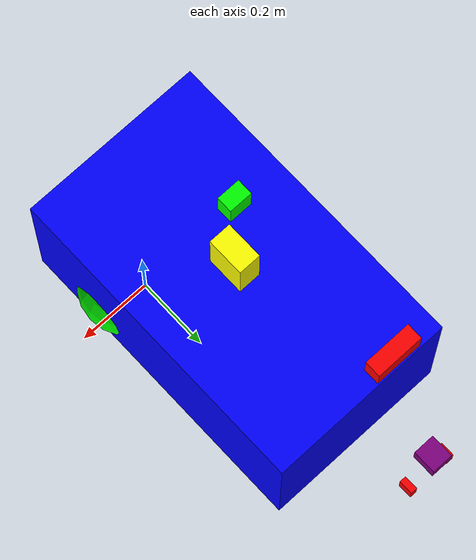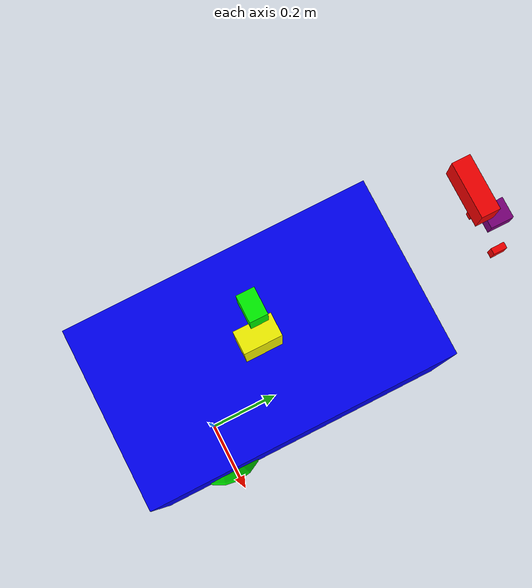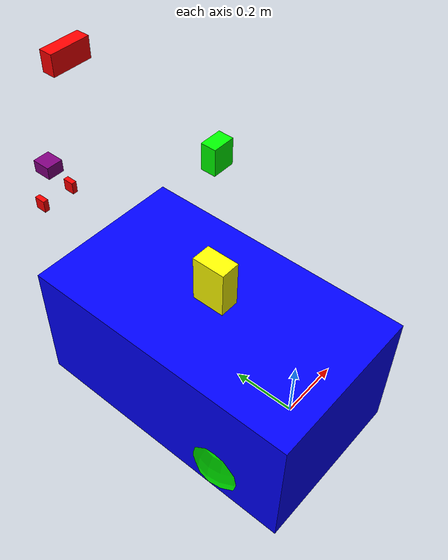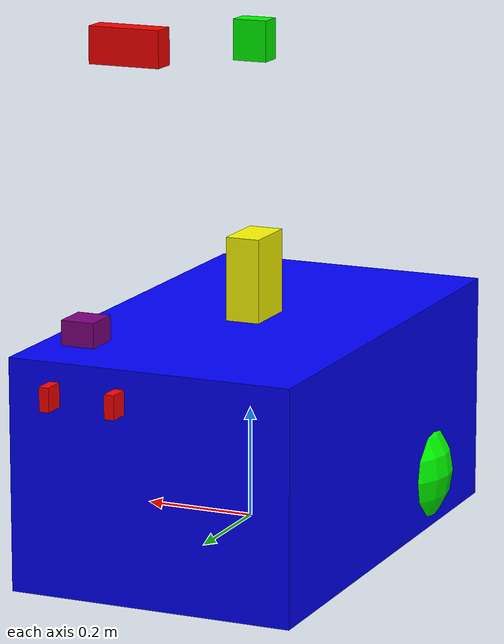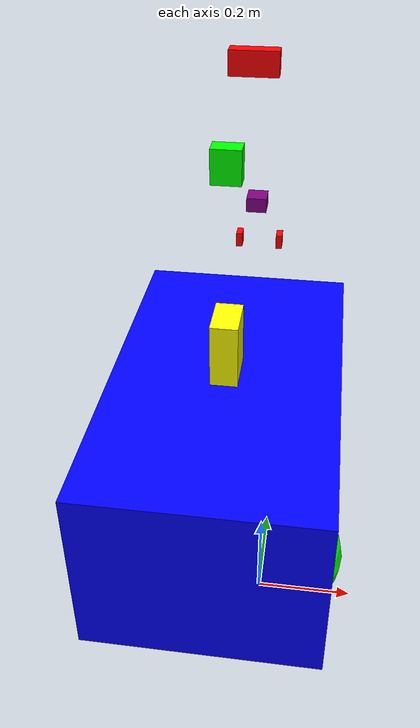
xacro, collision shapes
<?xml version="1.0"?>
<robot name="gruv_robot" xmlns:xacro="http://www.ros.org/wiki/xacro">

<!-- Include common properties -->
<xacro:include filename="common_properties.xacro"/>

<!-- Include mobile uvc -->
<xacro:include filename="mobile_uvc.xacro"/>

<!-- Include scara arm -->
<xacro:include filename="scara_arm.xacro"/>

</robot>

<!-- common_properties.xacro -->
<robot xmlns:xacro="http://www.ros.org/wiki/xacro">

    <!-- Common materials -->

    <material name="blue"><color rgba="0 0 1 1"/></material>
    <material name="green"><color rgba="0 1 0 1"/></material>
    <material name="yellow"><color rgba="1 1 0 1"/></material>
    <material name="orange"><color rgba="1 0.5 0 1"/></material>
    <material name="purple"><color rgba="0.5 0 0.5 1"/></material>
    <material name="red"><color rgba="1 0 0 1"/></material>
    <material name="gray"><color rgba="0.5 0.5 0.5 1"/></material>
    <material name="grey"><color rgba="0.5 0.5 0.5 1"/></material>

    <!-- Common inertia calculations -->

    <xacro:macro name="box_inertia" params="m x y z o_xyz o_rpy">
        <inertial>
            <mass value="${m}" />
            <origin xyz="${o_xyz}" rpy="${o_rpy}" />
            <inertia ixx="${(m/12) * (y*y + z*z)}" ixy="0" ixz="0"
                     iyy="${(m/12) * (x*x + z*z)}" iyz="0"
                     izz="${(m/12) * (x*x + y*y)}" />
        </inertial>
    </xacro:macro>

    <xacro:macro name="cylinder_inertia" params="m r h o_xyz o_rpy">
        <inertial>
            <mass value="${m}"/>
            <origin xyz="${o_xyz}" rpy="${o_rpy}"/>
            <inertia
                ixx="${(1/12.0)*m*(3*r*r + h*h)}" ixy="0" ixz="0"
                iyy="${(1/12.0)*m*(3*r*r + h*h)}" iyz="0"
                izz="${(1/2.0)*m*r*r}"/>
        </inertial>
    </xacro:macro>

    <xacro:macro name="sphere_inertia" params="m r o_xyz o_rpy">
        <inertial>
            <mass value="${m}"/>
            <origin xyz="${o_xyz}" rpy="${o_rpy}"/>
            <inertia
                ixx="${(2/5.0)*m*r*r}" ixy="0" ixz="0"
                iyy="${(2/5.0)*m*r*r}" iyz="0"
                izz="${(2/5.0)*m*r*r}"/>
        </inertial>
    </xacro:macro>

</robot>

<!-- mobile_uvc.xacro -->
<robot xmlns:xacro="http://www.ros.org/wiki/xacro">

  <!--       PROPERTIES          -->

  <xacro:property name="wheel_radius" value="0.119289"/>
  <xacro:property name="wheel_width" value="0.160767"/>
  <xacro:property name="base_width" value="0.478531"/>
  <xacro:property name="base_length" value="0.849993"/>
  <xacro:property name="base_height" value="0.253914"/>

  <xacro:property name="roda_radius" value="0.038463"/>

  <xacro:property name="base_x" value="0.102772"/>
  <xacro:property name="base_y" value="-0.213746"/>
  <xacro:property name="base_z" value="-0.353914"/>

  <xacro:property name="left_wheel_x" value="0.342038"/>
  <xacro:property name="right_wheel_x" value="-0.136493"/>
  <xacro:property name="wheel_z" value="-0.119289"/>

  <xacro:property name="roda_x" value="0.102772"/>
  <xacro:property name="roda_y" value="-0.422475"/>
  <xacro:property name="roda_z" value="-0.045338"/>

  <!-- Masses -->
  <xacro:property name="base_mass" value="2.5"/>
  <xacro:property name="wheel_mass" value="0.35"/>
  <xacro:property name="roda_mass" value="0.2"/>

  <!--        ROOT FRAME         -->

  <link name="base_footprint"/>

  <!--     MOBILE BASE LINK      -->

  <link name="mobile_uvc_base_link">
    <visual>
      <geometry>
        <mesh filename="file:///home/linos/cad_projects/mobile/body.stl" scale="0.001 0.001 0.001"/>
      </geometry>
      <origin xyz="${base_x} ${base_y} ${base_z}" rpy="0 0 0"/>
      <material name="blue"/>
    </visual>

    <collision>
      <geometry>
        <box size="0.500 0.849993 0.4"/>
      </geometry>
      <origin xyz="0 0 ${-0.253914/2}" rpy="0 0 0"/>
    </collision>

    <!-- INERTIA (BOX) -->
    <xacro:box_inertia
        m="${base_mass}"
        x="0.500"
        y="0.849993"
        z="0.4"
        o_xyz="0 0 ${-0.253914/2}"
        o_rpy="0 0 0"/>
  </link>

  <!--       LEFT WHEEL          -->

  <link name="left_wheel_link">
    <visual>
      <geometry>
        <mesh filename="file:///home/linos/cad_projects/mobile/left_wheel.stl" scale="0.001 0.001 0.001"/>
      </geometry>
      <origin xyz="${left_wheel_x} 0 ${wheel_z}" rpy="0 0 0"/>
      <material name="green"/>
    </visual>

    <collision>
      <geometry>
        <sphere radius="${wheel_radius}"/>
      </geometry>
      <origin xyz="${wheel_width/2} 0 0" rpy="0 0 0"/>
    </collision>

    <!-- INERTIA (SPHERE) -->
    <xacro:sphere_inertia
        m="${wheel_mass}"
        r="${wheel_radius}"
        o_xyz="${wheel_width/2} 0 0"
        o_rpy="0 0 0"/>
  </link>

  <!--       RIGHT WHEEL         -->

  <link name="right_wheel_link">
    <visual>
      <geometry>
        <mesh filename="file:///home/linos/cad_projects/mobile/right_wheel.stl" scale="0.001 0.001 0.001"/>
      </geometry>
      <origin xyz="${right_wheel_x} 0 ${wheel_z}" rpy="0 0 0"/>
      <material name="green"/>
    </visual>

    <collision>
      <geometry>
        <sphere radius="${wheel_radius}"/>
      </geometry>
      <origin xyz="${-wheel_width/2} 0 0" rpy="0 0 0"/>
    </collision>

    <!-- INERTIA (SPHERE) -->
    <xacro:sphere_inertia
        m="${wheel_mass}"
        r="${wheel_radius}"
        o_xyz="${-wheel_width/2} 0 0"
        o_rpy="0 0 0"/>
  </link>

  <!--           RODA            -->

  <link name="roda_link">
    <visual>
      <geometry>
        <mesh filename="file:///home/linos/cad_projects/mobile/roda.stl" scale="0.001 0.001 0.001"/>
      </geometry>
      <origin xyz="${roda_x} ${roda_y} ${roda_z}" rpy="0 0 0"/>
      <material name="green"/>
    </visual>

    <collision>
      <geometry>
        <sphere radius="${roda_radius}"/>
      </geometry>
    </collision>

    <!-- INERTIA (SPHERE) -->
    <xacro:sphere_inertia
        m="${roda_mass}"
        r="${roda_radius}"
        o_xyz="0 0 0"
        o_rpy="0 0 0"/>
  </link>

  <!--           JOINTS          -->

  <joint name="base_to_base_footprint_joint" type="fixed">
    <parent link="base_footprint"/>
    <child link="mobile_uvc_base_link"/>
    <origin xyz="${-base_x} ${-base_y} ${-base_z}" rpy="0 0 0"/>
  </joint>

  <joint name="left_wheel_joint" type="continuous">
    <parent link="mobile_uvc_base_link"/>
    <child link="left_wheel_link"/>
    <origin xyz="${base_x - left_wheel_x} ${base_y} ${base_z - wheel_z}" rpy="0 0 0"/>
    <axis xyz="1 0 0"/>
  </joint>

  <joint name="right_wheel_joint" type="continuous">
    <parent link="mobile_uvc_base_link"/>
    <child link="right_wheel_link"/>
    <origin xyz="${base_x - right_wheel_x} ${base_y} ${base_z - wheel_z}" rpy="0 0 0"/>
    <axis xyz="1 0 0"/>
  </joint>

  <joint name="roda_joint" type="continuous">
    <parent link="mobile_uvc_base_link"/>
    <child link="roda_link"/>
    <origin xyz="${base_x - roda_x} ${base_y - roda_y} ${base_z - roda_z}" rpy="0 0 0"/>
    <axis xyz="0 1 0"/>
  </joint>

</robot>

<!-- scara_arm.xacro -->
<robot xmlns:xacro="http://www.ros.org/wiki/xacro">

<xacro:property name="base_cylinder_height" value="0.060"/>
<xacro:property name="base_cylinder_radius" value="0.12"/>
<xacro:property name="slider_length" value="0.472"/>

<xacro:property name="mass_base_cylinder" value="1.5"/>
<xacro:property name="mass_rotary_bearing" value="1.0"/>
<xacro:property name="mass_waist_structure" value="3.0"/>

<xacro:property name="mass_slider_carriage" value="1.8"/>
<xacro:property name="mass_shoulder" value="2.0"/>
<xacro:property name="mass_elbow" value="1.7"/>
<xacro:property name="mass_wrist" value="1.1"/>
<xacro:property name="mass_finger" value="0.25"/>

<link name="arm_base_link">
  <visual>
    <geometry>
      <mesh filename="file:///home/linos/cad_projects/gripper/base.stl" scale="0.001 0.001 0.001"/>
    </geometry>
    <origin xyz="0 0 0" rpy="0 0 0"/>
    <material name="gray"/>
  </visual>

  <collision>
    <geometry>
      <cylinder radius="${base_cylinder_radius}" length="${base_cylinder_height}"/>
    </geometry>
  </collision>

  <xacro:cylinder_inertia
      m="${mass_base_cylinder}"
      r="${base_cylinder_radius}"
      h="${base_cylinder_height}"
      o_xyz="0 0 0"
      o_rpy="0 0 0"/>
</link>

<link name="waist_link">
  <visual>
    <geometry>
      <mesh filename="file:///home/linos/cad_projects/gripper/waist.stl" scale="0.001 0.001 0.001"/>
    </geometry>
    <origin xyz="0 0 ${-base_cylinder_height}" rpy="0 0 0"/>
    <material name="yellow"/>
  </visual>

  <collision>
    <geometry>
      <box size="0.06 0.10 0.317"/>
    </geometry>
    <origin xyz="0 0 0" rpy="0 0 0"/>
  </collision>

  <xacro:box_inertia
      m="${mass_rotary_bearing + mass_waist_structure}"
      x="0.06"
      y="0.10"
      z="0.317"
      o_xyz="0 0 0"
      o_rpy="0 0 0"/>
</link>

<link name="slide_carriage_link">
  <visual>
    <geometry>
      <mesh filename="file:///home/linos/cad_projects/gripper/slider_carriage.stl" scale="0.001 0.001 0.001"/>
    </geometry>
    <origin xyz="0 0 ${-slider_length - base_cylinder_height}" rpy="0 0 0"/>
    <material name="green"/>
  </visual>

  <collision>
    <geometry>
      <box size="0.06 0.04 0.07"/>
    </geometry>
    <origin xyz="0 0 0" rpy="0 0 0"/>
  </collision>

  <xacro:box_inertia
      m="${mass_slider_carriage}"
      x="0.06"
      y="0.04"
      z="0.07"
      o_xyz="0 0 0"
      o_rpy="0 0 0"/>
</link>

<link name="shoulder_link">
  <visual>
    <geometry>
      <mesh filename="file:///home/linos/cad_projects/gripper/shoulder.stl" scale="0.001 0.001 0.001"/>
    </geometry>
    <origin xyz="0 -0.1212 ${-slider_length + base_cylinder_height - 2 * 0.09}" rpy="0 0 0"/>
    <material name="orange"/>
  </visual>

  <collision>
    <geometry>
      <box size="0.12 0.04 0.06"/>
    </geometry>
    <origin xyz="0 -0.358 ${-slider_length + base_cylinder_height - 2 * 0.09}" rpy="0 0 0"/>
  </collision>

  <xacro:box_inertia
      m="${mass_shoulder}"
      x="0.12"
      y="0.04"
      z="0.06"
      o_xyz="0 0 0"
      o_rpy="0 0 0"/>
</link>

<link name="elbow_link">
  <visual>
    <geometry>
      <mesh filename="file:///home/linos/cad_projects/gripper/elbow.stl" scale="0.001 0.001 0.001"/>
    </geometry>
    <origin xyz="0 ${-0.48} ${-slider_length + base_cylinder_height - 2 * 0.09}" rpy="0 0 0"/>
    <material name="red"/>
  </visual>

  <collision>
    <geometry>
      <box size="0.12 0.04 0.06"/>
    </geometry>
    <origin xyz="0 0 0" rpy="0 0 0"/>
  </collision>

  <xacro:box_inertia
      m="${mass_elbow}"
      x="0.12"
      y="0.04"
      z="0.06"
      o_xyz="0 0 0"
      o_rpy="0 0 0"/>
</link>

<link name="wrist_link">
  <visual>
    <geometry>
      <mesh filename="file:///home/linos/cad_projects/gripper/wrist.stl" scale="0.001 0.001 0.001"/>
    </geometry>
    <origin xyz="0 0.639 0.17" rpy="${pi} 0 0"/>
    <material name="purple"/>
  </visual>

  <collision>
    <geometry>
      <box size="0.055 0.06 0.04"/>
    </geometry>
    <origin xyz="0 0 0" rpy="0 0 0"/>
  </collision>

  <xacro:box_inertia
      m="${mass_wrist}"
      x="0.055"
      y="0.06"
      z="0.04"
      o_xyz="0 0 0"
      o_rpy="0 0 0"/>
</link>

<link name="left_finger_link">
  <visual>
    <geometry>
      <mesh filename="file:///home/linos/cad_projects/gripper/left_finger.stl" scale="0.001 0.001 0.001"/>
    </geometry>
    <origin xyz="-0.02 -0.639 0.06" rpy="0 ${pi} 0"/>
    <material name="red"/>
  </visual>

  <collision>
    <geometry>
      <box size="0.017 0.037 0.04"/>
    </geometry>
    <origin xyz="0 0 0" rpy="0 0 0"/>
  </collision>

  <xacro:box_inertia
      m="${mass_finger}"
      x="0.017"
      y="0.037"
      z="0.04"
      o_xyz="0 0 0"
      o_rpy="0 0 0"/>
</link>

<link name="right_finger_link">
  <visual>
    <geometry>
      <mesh filename="file:///home/linos/cad_projects/gripper/right_finger.stl" scale="0.001 0.001 0.001"/>
    </geometry>
    <origin xyz="0.02 -0.639 0.06" rpy="0 ${pi} 0"/>
    <material name="red"/>
  </visual>

  <collision>
    <geometry>
      <box size="0.017 0.037 0.04"/>
    </geometry>
    <origin xyz="0 0 0" rpy="0 0 0"/>
  </collision>

  <xacro:box_inertia
      m="${mass_finger}"
      x="0.017"
      y="0.037"
      z="0.04"
      o_xyz="0 0 0"
      o_rpy="0 0 0"/>
</link>

<joint name="arm_base_to_mobile_base_link" type="fixed">
  <parent link="mobile_uvc_base_link"/>
  <child link="arm_base_link"/>
  <origin xyz="0 0 0" rpy="0 0 0"/>
</joint>

<joint name="arm_base_to_waist" type="revolute">
  <parent link="arm_base_link"/>
  <child link="waist_link"/>
  <origin xyz="0 0 ${base_cylinder_height}" rpy="0 0 0"/>
  <axis xyz="0 0 1"/>
  <limit lower="${-pi* 5/6}" upper="${pi*5/6}" effort="50" velocity="1.0"/>
</joint>

<joint name="slide_carriage_to_slider" type="prismatic">
  <parent link="waist_link"/>
  <child link="slide_carriage_link"/>
  <origin xyz="0 0 ${base_cylinder_height + slider_length - 0.09 + 0.05}" rpy="0 0 0"/>
  <axis xyz="0 0 1"/>
  <limit lower="${-slider_length + 0.126}" upper="${0}" effort="50" velocity="0.1"/>
</joint>

<joint name="shoulder_to_slide_carriage" type="revolute">
  <parent link="slide_carriage_link"/>
  <child link="shoulder_link"/>
  <origin xyz="0 0.12124 0.06" rpy="0 0 0"/>
  <axis xyz="0 0 1"/>
  <limit lower="${-pi/2}" upper="${pi/2}" effort="50" velocity="1.0"/>
</joint>

<joint name="elbow_to_shoulder" type="revolute">
  <parent link="shoulder_link"/>
  <child link="elbow_link"/>
  <origin xyz="0 0.358 0" rpy="0 0 0"/>
  <axis xyz="0 0 1"/>
  <limit lower="${-pi/2}" upper="${pi/2}" effort="50" velocity="1.0"/>
</joint>

<joint name="wrist_to_elbow" type="revolute">
  <parent link="elbow_link"/>
  <child link="wrist_link"/>
  <origin xyz="0 0.16 -0.42" rpy="0 ${pi} 0"/>
  <axis xyz="0 0 1"/>
  <limit lower="${-pi/2}" upper="${pi/2}" effort="50" velocity="1.0"/>
</joint>

<joint name="left_finger_to_wrist" type="prismatic">
  <parent link="wrist_link"/>
  <child link="left_finger_link"/>
  <origin xyz="0.04728 0 0.1139" rpy="0 0 0"/>
  <axis xyz="1 0 0"/>
  <limit lower="0" upper="-0.08" effort="20" velocity="0.05"/>
</joint>

<joint name="right_finger_to_wrist" type="prismatic">
  <parent link="wrist_link"/>
  <child link="right_finger_link"/>
  <origin xyz="${-0.04728 -0.018} 0 0.1139" rpy="0 0 0"/>
  <axis xyz="1 0 0"/>
  <limit lower="0" upper="0.08" effort="20" velocity="0.05"/>
</joint>

</robot>
